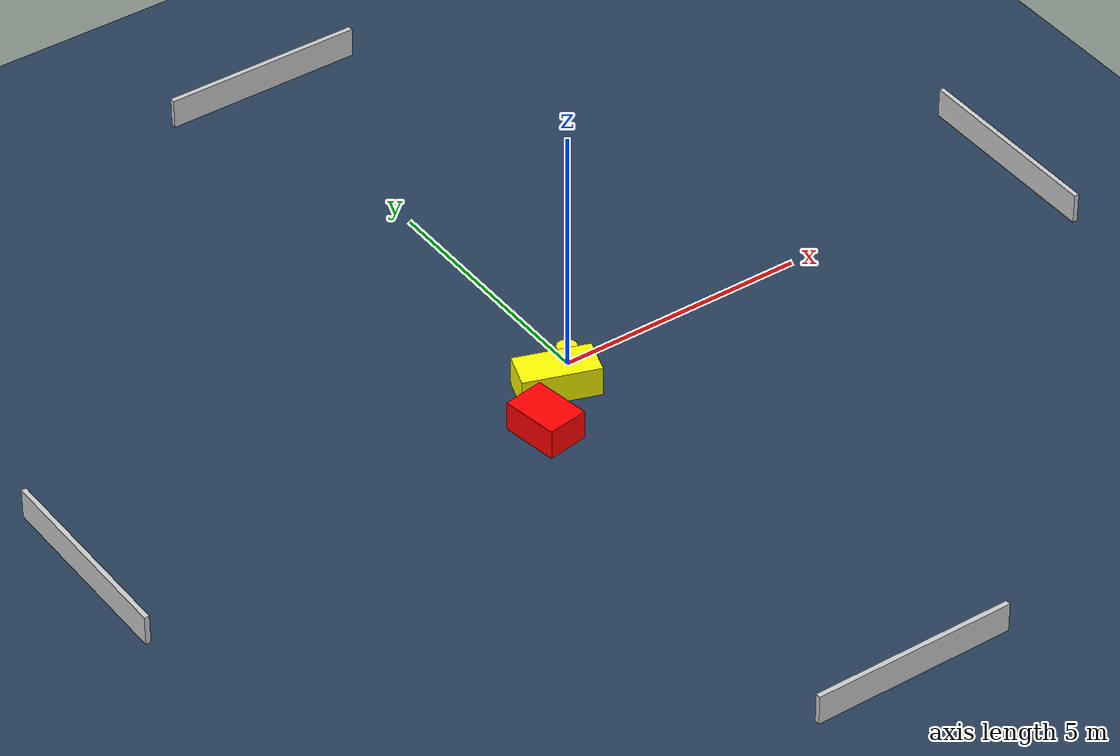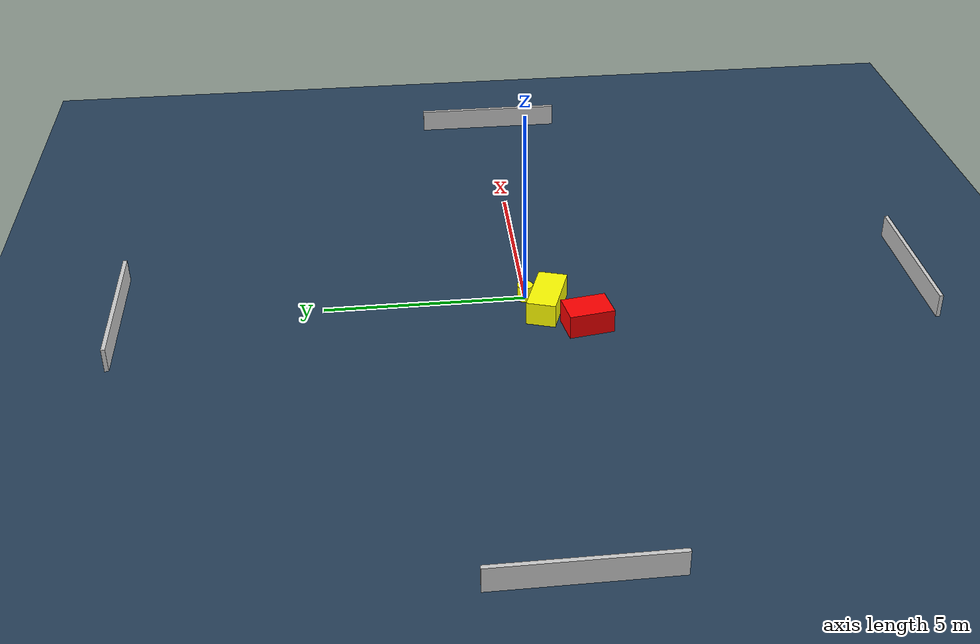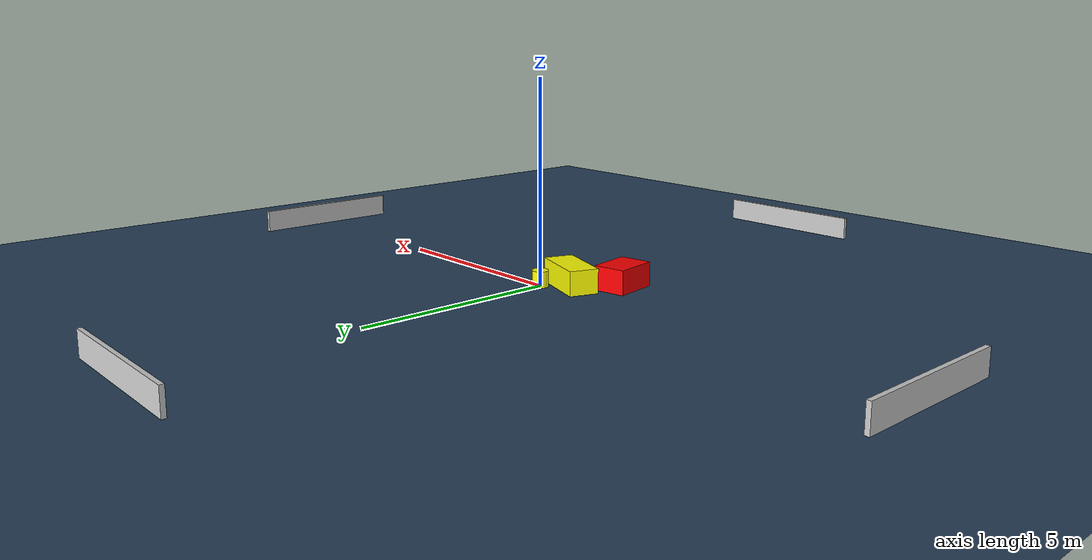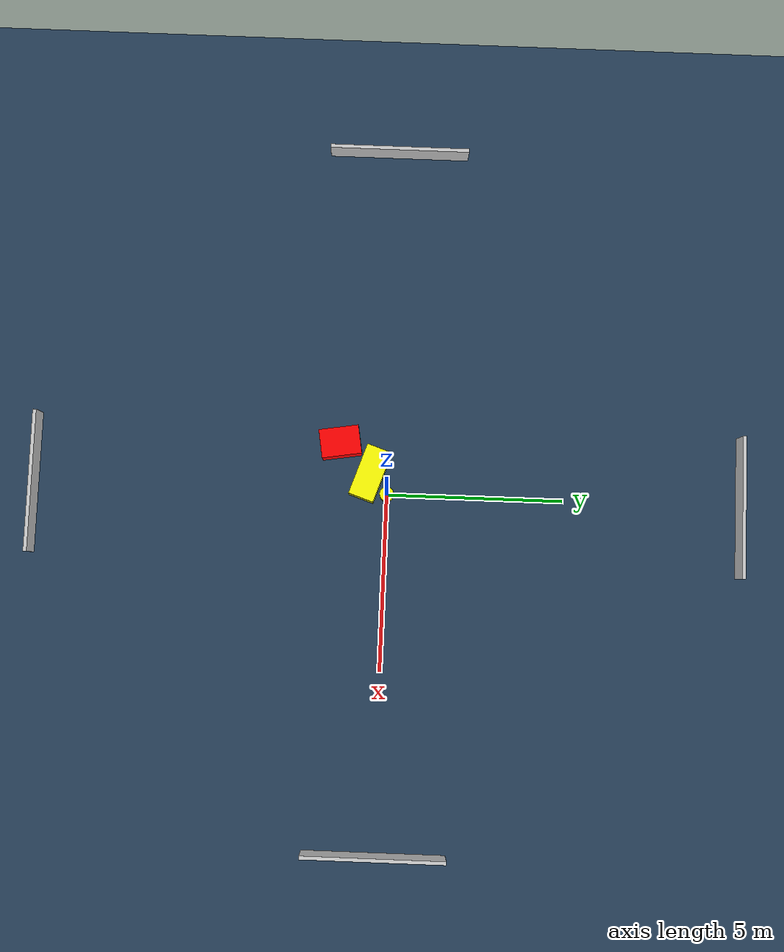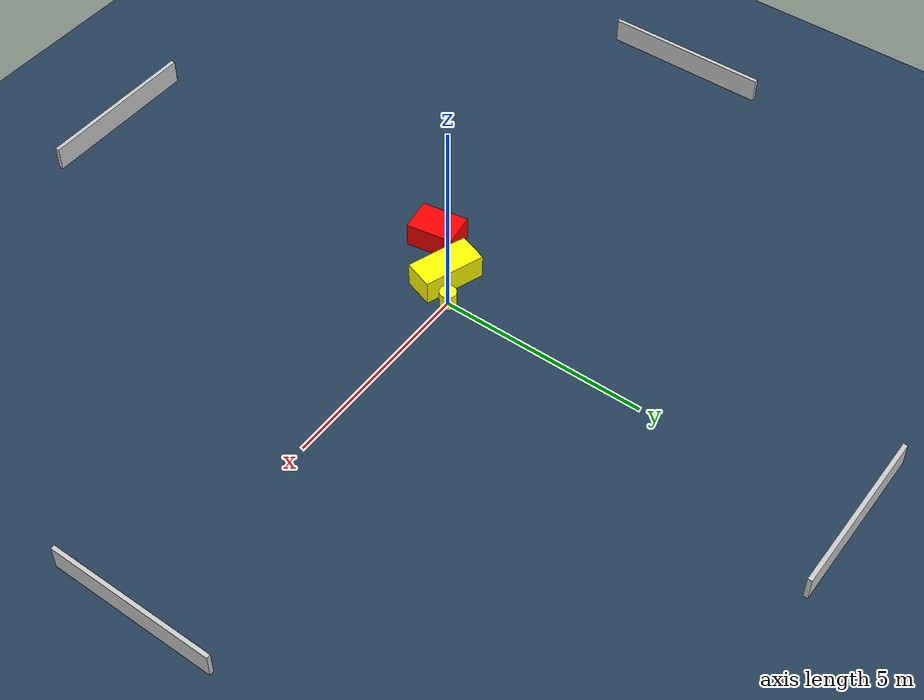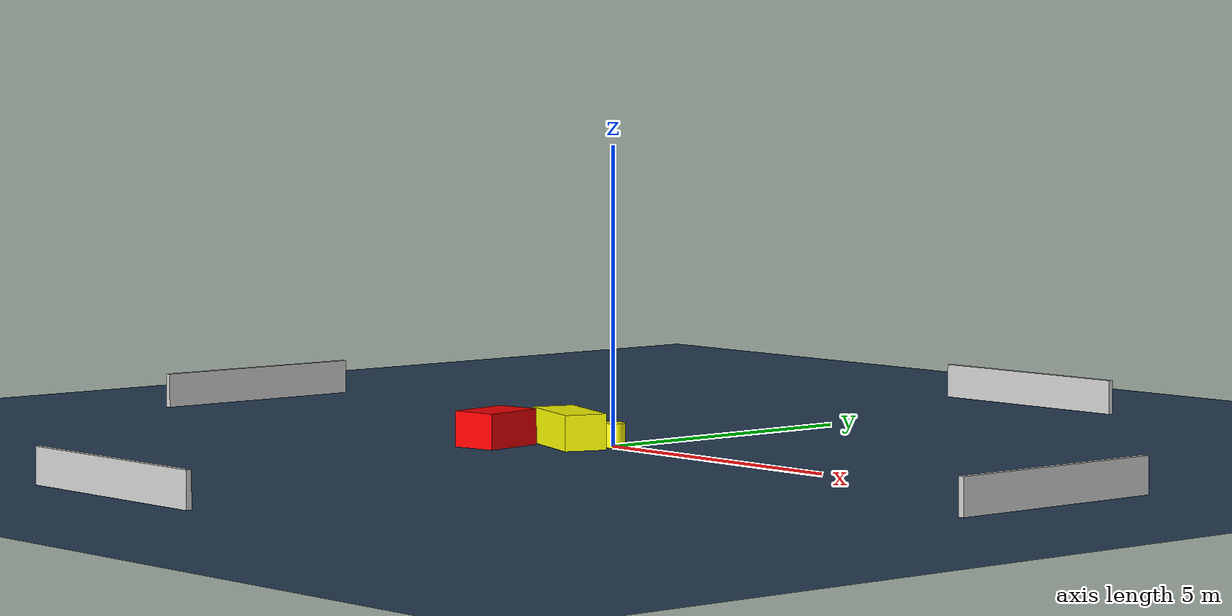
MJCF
<?xml version="1.0" ?>
<mujoco model="generated_environment">
  <option timestep="0.01" integrator="RK4" cone="elliptic"/>
  <default>
    <geom density="1"/>
  </default>
  <asset>
    <texture builtin="gradient" height="3072" name="skybox" rgb1="0.3 0.5 0.7" rgb2="0 0 0" type="skybox" width="512"/>
    <texture builtin="checker" height="300" name="groundplane" rgb1="0.2 0.3 0.4" rgb2="0.1 0.2 0.3" type="2d" width="300"/>
    <material name="groundplane" reflectance="0.2" texrepeat="5 5" texture="groundplane"/>
  </asset>
  <worldbody>
    <light dir="0 0 -1" directional="true" pos="0 0 1.5"/>
    <geom condim="3" friction="0.5 0.005 0.001" material="groundplane" name="floor" pos="0 0 0" size="0 0 0.05" type="plane"/>
    <body name="walls">
      <geom name="wall_1" condim="4" pos="-10.0 0.0 0.3" rgba="0.800000011920929 0.800000011920929 0.800000011920929 1.0" size="0.05 2.0 0.3" type="box"/>
      <geom name="wall_2" condim="4" pos="10.0 0.0 0.3" rgba="0.800000011920929 0.800000011920929 0.800000011920929 1.0" size="0.05 2.0 0.3" type="box"/>
      <geom name="wall_3" condim="4" pos="0.0 -10.0 0.3" rgba="0.800000011920929 0.800000011920929 0.800000011920929 1.0" size="2.0 0.05 0.3" type="box"/>
      <geom name="wall_4" condim="4" pos="0.0 10.0 0.3" rgba="0.800000011920929 0.800000011920929 0.800000011920929 1.0" size="2.0 0.05 0.3" type="box"/>
    </body>
    <body name="robot">
      <joint name="joint_x" type="slide" pos="0 0 0" axis="1 0 0"/>
      <joint name="joint_y" type="slide" pos="0 0 0" axis="0 1 0"/>
      <geom name="robot" type="cylinder" pos="0.0 0.0 0.2" size="0.2 0.2 0.0" mass="5.0" friction="1.0 0.005 0.0001" condim="4" rgba="1.0 1.0 0.0 1.0"/>
    </body>
    <body name="obstacle_1_movable">
      <geom name="obstacle_1_movable" condim="4" pos="-0.5616786760697109 -0.48182809453284103 0.3" euler="0 0 71.13145639182362" friction="0.0 0.005 0.001" rgba="1.0 1.0 0.0 1.0" size="0.3642372992822116 0.7453243812160197 0.3" type="box" mass="0.1"/>
      <joint type="free"/>
    </body>
    <body name="obstacle_2_static">
      <geom name="obstacle_2_static" condim="4" pos="-1.4176638204735814 -1.3591903538647532 0.3" euler="0 0 279.2320369248209" friction="0.0 0.005 0.001" rgba="1.0 0.0 0.0 1.0" size="0.5616160113005467 0.4033421817333176 0.3" type="box"/>
    </body>
  </worldbody>
  <actuator>
    <motor name="actuator_x" joint="joint_x" gear="1" ctrlrange="-1 1"/>
    <motor name="actuator_y" joint="joint_y" gear="1" ctrlrange="-1 1"/>
  </actuator>
</mujoco>
